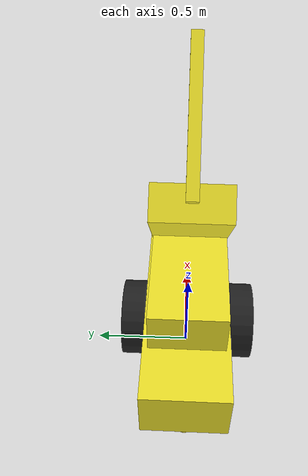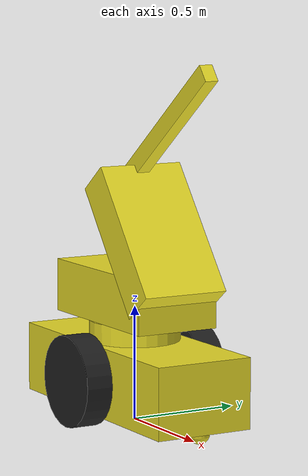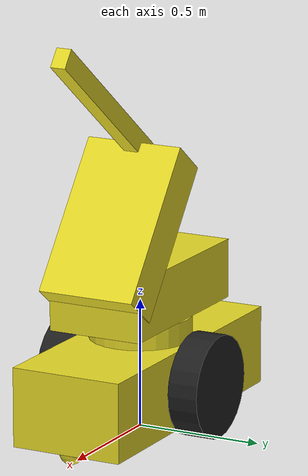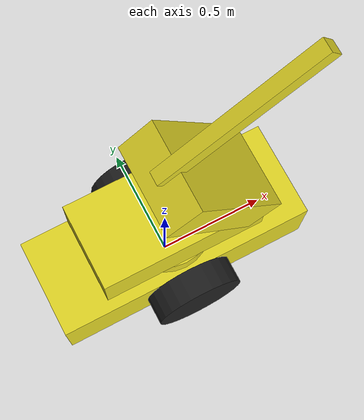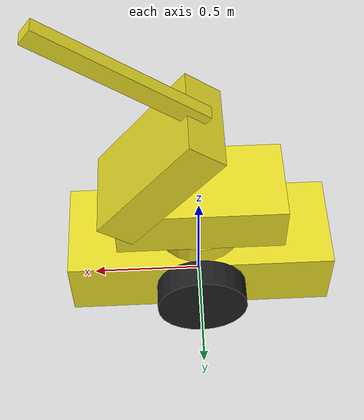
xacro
<?xml version="1.0"?>

<robot xmlns:xacro="http://www.ros.org/wiki/xacro" name="kenny">
  <xacro:arg name="use_sim" default="false" />

  <!-- Enable setting arguments from the launch file -->
  <xacro:arg name="use_fake_hardware" default="true" />
  <xacro:arg name="fake_sensor_commands" default="false" />
  <xacro:arg name="prefix" default="" />

  <xacro:include filename="$(find kenny_description)/urdf/kenny_description.urdf" />

  <!-- Import all Gazebo-customization elements, including Gazebo colors -->
  <xacro:include filename="$(find kenny_description)/gazebo/kenny.gazebo.xacro" />

  <!-- Import Rviz colors -->
  <xacro:include filename="$(find kenny_description)/gazebo/kenny.materials.xacro" />

  <!-- Import kenny ros2_control description -->
  <xacro:include filename="$(find kenny_description)/ros2_control/kenny_system.ros2_control.xacro" />

  <xacro:kenny prefix="$(arg prefix)" /> <!-- kenny description macro -->

  <xacro:kenny_gazebo prefix="$(arg prefix)" />

  <xacro:kenny_system
    name="KennySystem" prefix="$(arg prefix)"
    use_fake_hardware="$(arg use_fake_hardware)"
    fake_sensor_commands="$(arg fake_sensor_commands)"/>

</robot>

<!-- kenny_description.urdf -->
<robot xmlns:xacro="http://www.ros.org/wiki/xacro">

  <xacro:macro name="kenny" params="prefix">

    <xacro:include filename="$(find kenny_description)/urdf/base/base.urdf.xacro" />
    <xacro:include filename="$(find kenny_description)/urdf/arm/arm.urdf.xacro" />
    <xacro:include filename="$(find kenny_description)/urdf/camera_mechanism/camera_mechanism.urdf.xacro" />

    <!--  ++++++++++++++++++++++++++++++++++++++++ PARAMETERS -->

    <xacro:property name="pan_arm_offset" value="0.12"/>

    <!--  ++++++++++++++++++++++++++++++++++++++++ LINKS -->

    <xacro:kenny_base />

    <xacro:kenny_arm parent="base_link">
      <origin xyz="${reel_base_offset} 0 ${base_depth/2+0.5*reel_length}" rpy="0 0 0"/>
    </xacro:kenny_arm>

    <xacro:camera_mechanism parent="arm">
      <origin xyz="${pan_arm_offset} 0 ${-arm_depth/2}" rpy="0 0 0"/>
  </xacro:camera_mechanism>

  </xacro:macro>

</robot>

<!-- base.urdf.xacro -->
<robot xmlns:xacro="http://www.ros.org/wiki/xacro">

  <xacro:include filename="$(find kenny_description)/urdf/base/base.transmissions.xacro"/>

  <xacro:property name="base_length" value="1.176" />
  <xacro:property name="base_width" value="0.444" />
  <xacro:property name="base_depth" value="0.308" />

  <xacro:property name="wheel_length" value="1.135" />
  <xacro:property name="wheel_width" value="0.12" />
  <xacro:property name="wheel_rad" value="0.2" />
  <xacro:property name="wheel_sep" value="0.6" />

  <xacro:property name="caster_rad" value="${wheel_rad - (base_depth/2)}"/>

  <xacro:property name="off_floor" value="${wheel_rad}" />

  <xacro:macro name="wheel" params="name reflect">
    <link name="${name}">

      <visual>
        <geometry>
            <cylinder length="${wheel_width}" radius="${wheel_rad}"/>
        </geometry>
        <origin xyz="0 0 0" rpy="0 0 0"/>
        <material name="black"/>
      </visual>

      <collision>
        <geometry>
            <cylinder length="${wheel_width}" radius="${wheel_rad}"/>
        </geometry>
      </collision>

      <inertial>
        <origin xyz="0 0 0" rpy="0 0 0"/>
        <mass value="2"/>
        <inertia ixx="0.02467" ixy="0.0" ixz="0.0" iyy="0.04411" iyz="0.0" izz="0.02467"/>
      </inertial>
    </link>

    <joint name="joint_base_${name}" type="continuous">
      <parent link="base_link"/>
      <child link="${name}"/>
      <origin xyz="0 ${reflect * 0.5*(base_width+wheel_width)} 0" rpy="1.57 0 0"/>
      <axis xyz="0 0 1"/>
    </joint>
  </xacro:macro>

  <xacro:macro name="caster" params="name reflect">
    <link name="${name}">
      <visual>
        <origin xyz="0 0 0"/>
        <geometry>
          <sphere radius="${caster_rad}"/>
        </geometry>
      </visual>
      <collision>
        <geometry>
          <sphere radius="${caster_rad}"/>
        </geometry>
      </collision>
      <inertial>
        <origin xyz="0 0 0" rpy="0 0 0"/>
        <mass value="0.5"/>
        <inertia ixx="0.02467" ixy="0.0" ixz="0.0" iyy="0.04411" iyz="0.0" izz="0.02467"/>
      </inertial>
    </link>
    <joint name="joint_base_${name}" type="revolute">
      <parent link="base_link"/>
      <child link="${name}"/>
      <origin xyz="${reflect*(base_length/2-caster_rad)} 0 ${-base_depth/2}"/>
      <axis xyz="0 0 1"/>
      <limit effort="1000" lower="0" upper="0" velocity="0"/>
    </joint>
  </xacro:macro>

  <xacro:macro name="kenny_base" >
  <!-- footprint link is used for calculating distances between
        the robot and obstacles -->
    <link name="base_footprint">
      <origin xyz="0 0 0"/>
    </link>

    <link name="base_link">
      <visual>
        <geometry>
            <box size="${base_length} ${base_width} ${base_depth}"/>
        </geometry>
        <origin xyz="0 0 0"/>
        <material name="yellow"/>
      </visual>
      <collision>
        <geometry>
            <box size="${base_length} ${base_width} ${base_depth}"/>
        </geometry>
        <origin xyz="0 0 0" />
      </collision>
    </link>
    <joint name="base_footprint_joint" type="fixed">
      <parent link="base_footprint"/>
      <child link="base_link"/>
      <origin xyz="0 0 ${off_floor}" />
    </joint>

    <link name="inertial_link">
      <inertial>
        <origin xyz="0 0 0" rpy="0 0 0" />
        <mass value="200"/>
        <inertia ixx="0.2" ixy="0.0" ixz="0.0" iyy="0.2" iyz="0.0" izz="0.2"/>
      </inertial>
    </link>
    <joint name="inertial_joint" type="fixed">
      <origin xyz="0 0 ${off_floor+0.5*base_depth}" rpy="0 0 0"/>
      <parent link="base_link" />
      <child link="inertial_link" />
    </joint>

    <!-- 4 Wheel Kenny -->
    <xacro:wheel name="wheel_right" reflect="1" />
    <xacro:wheel name="wheel_left" reflect="-1"/>
    <xacro:kenny_wheel_joint_transmission name="base_wheel_right"/>
    <xacro:kenny_wheel_joint_transmission name="base_wheel_left"/>

    <!-- 4 Wheel Kenny -->
    <!-- Transmission Macros for wheels -->

    <xacro:caster name="caster_front" reflect="1"/>
    <xacro:caster name="caster_back" reflect="-1"/>

    <!-- Gazebo Macro -->
  </xacro:macro>

</robot>

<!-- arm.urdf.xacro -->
<robot xmlns:xacro="http://www.ros.org/wiki/xacro" name="kenny">

  <xacro:include filename="$(find kenny_description)/urdf/arm/arm.transmission.xacro"/>

  <xacro:property name="arm_length" value="0.73"/>
  <xacro:property name="arm_width" value="0.378"/>
  <xacro:property name="arm_depth" value="0.232"/>

  <xacro:property name="forearm_length" value="0.64"/>
  <xacro:property name="forearm_width" value="0.389"/>
  <xacro:property name="forearm_depth" value="0.18"/>
  <xacro:property name="forearm_default_rotation" value="-0.65"/>

  <xacro:property name="hand_length" value="0.788"/>
  <xacro:property name="hand_width" value="0.06"/>
  <xacro:property name="hand_depth" value="0.08"/>

  <xacro:property name="reel_rad" value="0.199" />
  <xacro:property name="reel_length" value="0.09" />
  <xacro:property name="reel_base_offset" value="0.0" />

  <xacro:macro name="kenny_arm" params="parent *origin">

    <link name="dummy_reel"/>
    <joint name="dummy_reel_joint" type="revolute">
      <parent link="${parent}"/>
      <child link="dummy_reel"/>
      <xacro:insert_block name="origin"/>
      <axis xyz="0 0 1"/>
      <limit effort="1000.0" lower="0" upper="0" velocity="0"/>
    </joint>

    <link name="reel">
      <visual>
        <geometry>
          <cylinder length="${reel_length}" radius="${reel_rad}"/>
        </geometry>
        <origin xyz="0 0 0" rpy="0 0 0"/>
        <material name="yellow"/>
      </visual>

      <collision>
        <geometry>
            <cylinder length="${reel_length}" radius="${reel_rad}"/>
        </geometry>
      </collision>

      <inertial>
        <origin xyz="0 0 0" rpy="0 0 0"/>
        <mass value="1"/>
        <inertia ixx="0.2" ixy="0.0" ixz="0.0" iyy="0.2" iyz="0.0" izz="0.2"/>
      </inertial>
    </link>
    <!-- joint between reel and base - allows for motorised reel -->
    <joint name="reel_joint" type="revolute">
      <parent link="dummy_reel"/>
      <child link="reel"/>
      <axis xyz="0 0 1"/>
      <origin xyz="0 0 0" rpy="0 0 0"/>
      <limit effort="1000.0" lower="-180" upper="180" velocity="2"/>
    </joint>

    <link name="arm">
      <visual>
        <geometry>
          <box size="${arm_length} ${arm_width} ${arm_depth}"/>
        </geometry>
        <material name="yellow"/>
        <origin xyz="0 0 0" rpy="0 0 0"/>
      </visual>

      <collision>
        <geometry>
          <box size="${arm_length} ${arm_width} ${arm_depth}"/>
        </geometry>
      </collision>

      <inertial>
        <origin xyz="0 0 0" rpy="0 0 0"/>
        <mass value="1"/>
        <inertia ixx="0.2" ixy="0.0" ixz="0.0" iyy="0.2" iyz="0.0" izz="0.2"/>
      </inertial>
    </link>

    <!-- link between reel and arm -->
    <joint name="shoulder" type="continuous">
        <parent link="dummy_reel"/>
        <child link="arm"/>
        <origin xyz="${-1*reel_base_offset} 0 ${reel_length/2+arm_depth/2}" rpy="0 0 0"/>
        <axis xyz="0 0 1"/>
        <limit effort="1000.0" velocity="0"/>
    </joint>

    <link name="forearm">
      <visual>
        <geometry>
            <box size="${forearm_depth} ${forearm_width} ${forearm_length}"/>
        </geometry>
        <origin xyz="0 0 ${forearm_length/2}" rpy="0 0 0"/>
        <material name="yellow"/>
      </visual>

      <collision>
        <geometry>
            <box size="${forearm_depth} ${forearm_width} ${forearm_length}"/>
        </geometry>
        <origin xyz="0 0 ${forearm_length/2}" rpy="0 0 0"/>
      </collision>

      <inertial>
        <origin xyz="0 0 0" rpy="0 0 0"/>
        <mass value="1"/>
        <inertia ixx="0.2" ixy="0.0" ixz="0.0" iyy="0.2" iyz="0.0" izz="0.2"/>
      </inertial>
    </link>

    <!-- joint between arm and forearm -->
    <joint name="elbow" type="revolute">
      <parent link="arm"/>
      <child link="forearm"/>
      <axis xyz="0 1 0"/>
      <origin xyz="${arm_length/2} 0 0" rpy="0 ${forearm_default_rotation} 0"/>
      <limit effort="1000.0" lower="0" upper="1.65" velocity="0.5"/>
    </joint>

    <link name="hand">
      <visual>
        <geometry>
          <box size="${hand_length} ${hand_width} ${hand_depth}"/>
        </geometry>
        <origin xyz="${hand_length/2} 0 0" rpy="0 0 0"/>
        <material name="yellow"/>
      </visual>

      <collision>
        <geometry>
          <box size="${hand_length} ${hand_width} ${hand_depth}"/>
        </geometry>
        <origin xyz="${hand_length/2} 0 0" rpy="0 0 0"/>
      </collision>

      <inertial>
        <origin xyz="0 0 0" rpy="0 0 0"/>
        <mass value="1"/>
        <inertia ixx="0.2" ixy="0.0" ixz="0.0" iyy="0.2" iyz="0.0" izz="0.2"/>
      </inertial>
    </link>
  <!-- joint between forearm and hand -->
    <joint name="wrist" type="revolute">
      <parent link="forearm"/>
      <child link="hand"/>
      <axis xyz="0 1 0"/>
      <origin xyz="0 0 ${forearm_length}" rpy="0 0 0"/>
      <limit effort="1000.0" lower="0" upper="0.84" velocity="0.5"/>
    </joint>

    <!-- Transmission Macros -->
    <xacro:kenny_arm_joint_transmission name="shoulder"/>
    <xacro:kenny_arm_joint_transmission name="elbow"/>
    <xacro:kenny_arm_joint_transmission name="wrist"/>

    <xacro:kenny_arm_joint_transmission name="reel_joint"/>

  </xacro:macro>

</robot>

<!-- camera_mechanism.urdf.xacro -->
<robot xmlns:xacro="http://www.ros.org/wiki/xacro">

  <xacro:include filename="$(find kenny_description)/urdf/camera_mechanism/camera_mechanism.transmission.urdf"/>

  <xacro:property name="camera_pan_rad" value="0.095"/>
  <xacro:property name="camera_pan_length" value="0.023"/>

  <xacro:property name="camera_tilt_block_length" value="0.109"/>
  <xacro:property name="camera_tilt_block_width" value="0.053"/>
  <xacro:property name="camera_tilt_block_depth" value="0.142"/>

  <xacro:property name="camera_tilt_holder_length" value="0.081"/>
  <xacro:property name="camera_tilt_holder_width" value="0.153"/>
  <xacro:property name="camera_tilt_holder_depth" value="0.102"/>

  <xacro:macro name="camera_mechanism" params="parent *origin">
    <link name="camera_pan">
      <visual>
        <geometry>
          <cylinder length="${camera_pan_length}" radius="${camera_pan_rad}"/>
        </geometry>
        <origin xyz="0 0 ${camera_pan_length/2}" rpy="0 0 0"/>
        <material name="yellow"/>
      </visual>
      <collision>
        <geometry>
          <cylinder length="${camera_pan_length}" radius="${camera_pan_rad}"/>
        </geometry>
      </collision>
      <inertial>
        <origin xyz="0 0 0" rpy="0 0 0"/>
        <mass value="1"/>
        <inertia ixx="0.2" ixy="0.0" ixz="0.0" iyy="0.2" iyz="0.0" izz="0.2"/>
      </inertial>
    </link>
    <joint name="joint_camera_z_rotation" type="revolute">
      <parent link="${parent}"/>
      <child link="camera_pan"/>
      <axis xyz="0 0 1"/>
      <xacro:insert_block name="origin"/>
      <limit effort="1000.0" lower="${-pi/4}" upper="${pi/4}" velocity="0.5"/>
    </joint>

    <!-- Link created for aesthetics (prevent floating y-rotation link) -->
    <link name="camera_tilt_block">
      <visual>
        <geometry>
          <box size="${camera_tilt_block_length} ${camera_tilt_block_width} ${camera_tilt_block_depth}"/>
        </geometry>
        <origin xyz="0 0 0"/>
        <material name="yellow"/>
      </visual>
      <collision>
        <geometry>
            <box size="${camera_tilt_block_length} ${camera_tilt_block_width} ${camera_tilt_block_depth}"/>
        </geometry>
      </collision>
      <inertial>
        <origin xyz="0 0 0" rpy="0 0 0"/>
        <mass value="1"/>
        <inertia ixx="0.2" ixy="0.0" ixz="0.0" iyy="0.2" iyz="0.0" izz="0.2"/>
      </inertial>
    </link>
    <joint name="camera_tilt_block_to_pan" type="fixed">
      <parent link="camera_pan"/>
      <child link="camera_tilt_block"/>
      <axis xyz="0 1 0"/>
      <origin xyz="0 ${camera_pan_rad} ${camera_pan_rad-camera_tilt_block_width/2}" rpy="0 0 0"/>
    </joint>

    <!-- Link/Joint responsible for tilting (rotating about y axis) -->
    <link name="camera_tilt_holder">
      <visual>
        <geometry>
          <box size="${camera_tilt_holder_length} ${camera_tilt_holder_width} ${camera_tilt_holder_depth}"/>
        </geometry>
        <origin xyz="0 0 0"/>
        <material name="yellow"/>
      </visual>
      <inertial>
        <origin xyz="0 0 0" rpy="0 0 0"/>
        <mass value="1"/>
        <inertia ixx="0.2" ixy="0.0" ixz="0.0" iyy="0.2" iyz="0.0" izz="0.2"/>
      </inertial>
    </link>
    <joint name="joint_camera_y_rotation" type="revolute">
      <parent link="camera_tilt_block"/>
      <child link="camera_tilt_holder"/>
      <axis xyz="0 1 0"/>
      <origin xyz="0 ${-camera_tilt_holder_length} ${camera_tilt_block_depth/2}" rpy="0 0 0"/>
      <limit effort="1000.0" lower="${-1*pi/6}" upper="${pi/6}" velocity="0.5"/>
    </joint>

    <!-- call macros for defining transmission of camera joints -->
    <xacro:camera_joint name="camera_z_rotation"/>
    <xacro:camera_joint name="camera_y_rotation"/>

  </xacro:macro>

</robot>
